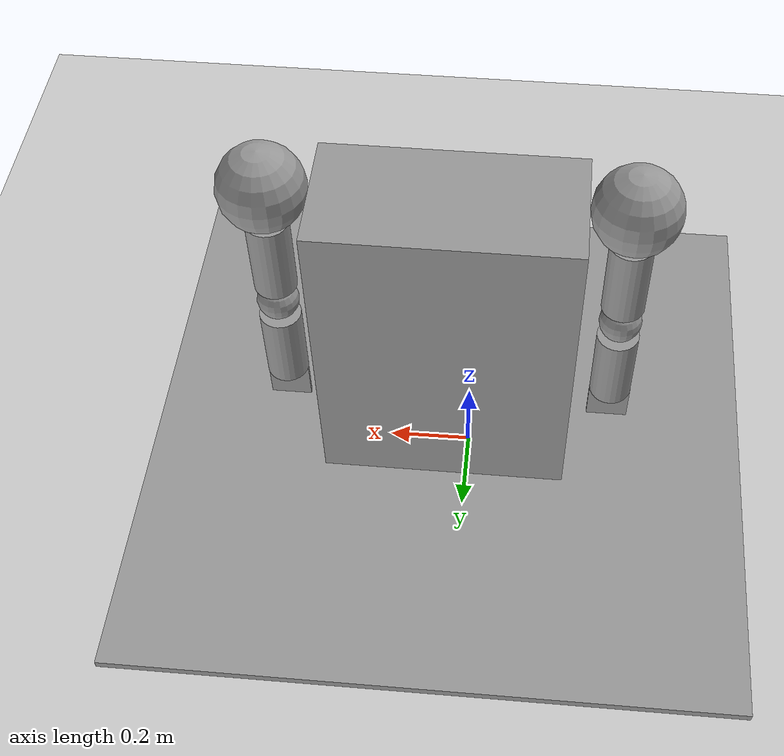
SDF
<sdf version="1.6">
 <world name="default">
  <light name="sun" type="directional">
   <pose>0 0 10 0 -0 0</pose>
   <diffuse>0.8 0.8 0.8 1</diffuse>
   <specular>0.2 0.2 0.2 1</specular>
   <attenuation>
    <range>1000</range>
    <constant>0.9</constant>
    <linear>0.01</linear>
    <quadratic>0.001</quadratic>
   </attenuation>
   <direction>-0.5 0.1 -0.9</direction>
  </light>
  <model name="ground_plane">
   <static>1</static>
   <link name="link">
    <collision name="collision">
     <geometry><plane><normal>0 0 1</normal><size>100 100</size></plane></geometry>
     <surface><friction><ode><mu>100</mu><mu2>50</mu2></ode></friction></surface>
    </collision>
    <visual name="visual">
     <cast_shadows>0</cast_shadows>
     <geometry><plane><normal>0 0 1</normal><size>100 100</size></plane></geometry>
     <material>
      <script><uri>file://media/materials/scripts/gazebo.material</uri><name>Gazebo/Grey</name></script>
     </material>
    </visual>
   </link>
  </model>
  <gravity>0 0 -9.8</gravity>
  <magnetic_field>6e-06 2.3e-05 -4.2e-05</magnetic_field>
  <atmosphere type="adiabatic"/>
  <physics name="default_physics" default="0" type="ode">
   <max_step_size>0.001</max_step_size>
   <real_time_factor>1</real_time_factor>
   <real_time_update_rate>1000</real_time_update_rate>
  </physics>
  <scene><ambient>0.4 0.4 0.4 1</ambient><background>0.7 0.7 0.7 1</background><shadows>1</shadows></scene>
  <spherical_coordinates>
   <surface_model>EARTH_WGS84</surface_model>
   <latitude_deg>0</latitude_deg>
   <longitude_deg>0</longitude_deg>
   <elevation>0</elevation>
   <heading_deg>0</heading_deg>
  </spherical_coordinates>
  <model name="ryan_arms">
   <link name="link_31">
    <inertial>
     <mass>1</mass>
     <inertia>
      <ixx>0.166667</ixx>
      <ixy>0</ixy>
      <ixz>0</ixz>
      <iyy>0.166667</iyy>
      <iyz>0</iyz>
      <izz>0.166667</izz>
     </inertia>
    </inertial>
    <pose>-0.391114 0.378827 -0.495833 0 -0 0</pose>
    <visual name="visual">
     <geometry><box><size>1.5 1.5 0.02</size></box></geometry>
     <material>
      <lighting>1</lighting>
      <script><uri>file://media/materials/scripts/gazebo.material</uri><name>Gazebo/Grey</name></script>
      <shader type="pixel"><normal_map>__default__</normal_map></shader>
      <ambient>0.3 0.3 0.3 1</ambient>
      <diffuse>0.7 0.7 0.7 1</diffuse>
      <specular>0.01 0.01 0.01 1</specular>
      <emissive>0 0 0 1</emissive>
     </material>
    </visual>
    <collision name="collision">
     <geometry><box><size>1.5 1.5 0.02</size></box></geometry>
     <surface>
      <friction>
       <ode><mu>1</mu><mu2>1</mu2><fdir1>0 0 0</fdir1><slip1>0</slip1><slip2>0</slip2></ode>
       <torsional>
        <coefficient>1</coefficient>
        <patch_radius>0</patch_radius>
        <surface_radius>0</surface_radius>
        <use_patch_radius>1</use_patch_radius>
        <ode><slip>0</slip></ode>
       </torsional>
      </friction>
      <bounce><restitution_coefficient>0</restitution_coefficient><threshold>1e+06</threshold></bounce>
      <contact>
       <collide_without_contact>0</collide_without_contact>
       <collide_without_contact_bitmask>1</collide_without_contact_bitmask>
       <collide_bitmask>1</collide_bitmask>
       <ode>
        <soft_cfm>0</soft_cfm>
        <soft_erp>0.2</soft_erp>
        <kp>1e+13</kp>
        <kd>1</kd>
        <max_vel>0.01</max_vel>
        <min_depth>0</min_depth>
       </ode>
       <bullet>
        <split_impulse>1</split_impulse>
        <split_impulse_penetration_threshold>-0.01</split_impulse_penetration_threshold>
        <soft_cfm>0</soft_cfm>
        <soft_erp>0.2</soft_erp>
        <kp>1e+13</kp>
        <kd>1</kd>
       </bullet>
      </contact>
     </surface>
    </collision>
   </link>
   <link name="link_32">
    <inertial>
     <mass>1</mass>
     <inertia>
      <ixx>0.166667</ixx>
      <ixy>0</ixy>
      <ixz>0</ixz>
      <iyy>0.166667</iyy>
      <iyz>0</iyz>
      <izz>0.166667</izz>
     </inertia>
    </inertial>
    <pose>-0.391114 0.378827 -0.085833 0 -0 0</pose>
    <visual name="visual">
     <geometry><box><size>0.6 0.3 0.8</size></box></geometry>
     <material>
      <lighting>1</lighting>
      <script><uri>file://media/materials/scripts/gazebo.material</uri><name>Gazebo/Grey</name></script>
      <shader type="pixel"><normal_map>__default__</normal_map></shader>
      <ambient>0.3 0.3 0.3 1</ambient>
      <diffuse>0.7 0.7 0.7 1</diffuse>
      <specular>0.01 0.01 0.01 1</specular>
      <emissive>0 0 0 1</emissive>
     </material>
    </visual>
    <collision name="collision">
     <geometry><box><size>0.6 0.3 0.8</size></box></geometry>
     <surface>
      <friction>
       <ode><mu>1</mu><mu2>1</mu2><fdir1>0 0 0</fdir1><slip1>0</slip1><slip2>0</slip2></ode>
       <torsional>
        <coefficient>1</coefficient>
        <patch_radius>0</patch_radius>
        <surface_radius>0</surface_radius>
        <use_patch_radius>1</use_patch_radius>
        <ode><slip>0</slip></ode>
       </torsional>
      </friction>
      <bounce><restitution_coefficient>0</restitution_coefficient><threshold>1e+06</threshold></bounce>
      <contact>
       <collide_without_contact>0</collide_without_contact>
       <collide_without_contact_bitmask>1</collide_without_contact_bitmask>
       <collide_bitmask>1</collide_bitmask>
       <ode>
        <soft_cfm>0</soft_cfm>
        <soft_erp>0.2</soft_erp>
        <kp>1e+13</kp>
        <kd>1</kd>
        <max_vel>0.01</max_vel>
        <min_depth>0</min_depth>
       </ode>
       <bullet>
        <split_impulse>1</split_impulse>
        <split_impulse_penetration_threshold>-0.01</split_impulse_penetration_threshold>
        <soft_cfm>0</soft_cfm>
        <soft_erp>0.2</soft_erp>
        <kp>1e+13</kp>
        <kd>1</kd>
       </bullet>
      </contact>
     </surface>
    </collision>
   </link>
   <link name="link_33">
    <inertial>
     <mass>1</mass>
     <inertia><ixx>0.1</ixx><ixy>0</ixy><ixz>0</ixz><iyy>0.1</iyy><iyz>0</iyz><izz>0.1</izz></inertia>
    </inertial>
    <pose>0.008886 0.378827 0.314167 0 -0 0</pose>
    <visual name="visual">
     <geometry><sphere><radius>0.1</radius></sphere></geometry>
     <material>
      <lighting>1</lighting>
      <script><uri>file://media/materials/scripts/gazebo.material</uri><name>Gazebo/Grey</name></script>
      <shader type="pixel"><normal_map>__default__</normal_map></shader>
      <ambient>0.3 0.3 0.3 1</ambient>
      <diffuse>0.7 0.7 0.7 1</diffuse>
      <specular>0.01 0.01 0.01 1</specular>
      <emissive>0 0 0 1</emissive>
     </material>
    </visual>
    <collision name="collision">
     <geometry><sphere><radius>0.1</radius></sphere></geometry>
     <surface>
      <friction>
       <ode><mu>1</mu><mu2>1</mu2><fdir1>0 0 0</fdir1><slip1>0</slip1><slip2>0</slip2></ode>
       <torsional>
        <coefficient>1</coefficient>
        <patch_radius>0</patch_radius>
        <surface_radius>0</surface_radius>
        <use_patch_radius>1</use_patch_radius>
        <ode><slip>0</slip></ode>
       </torsional>
      </friction>
      <bounce><restitution_coefficient>0</restitution_coefficient><threshold>1e+06</threshold></bounce>
      <contact>
       <collide_without_contact>0</collide_without_contact>
       <collide_without_contact_bitmask>1</collide_without_contact_bitmask>
       <collide_bitmask>1</collide_bitmask>
       <ode>
        <soft_cfm>0</soft_cfm>
        <soft_erp>0.2</soft_erp>
        <kp>1e+13</kp>
        <kd>1</kd>
        <max_vel>0.01</max_vel>
        <min_depth>0</min_depth>
       </ode>
       <bullet>
        <split_impulse>1</split_impulse>
        <split_impulse_penetration_threshold>-0.01</split_impulse_penetration_threshold>
        <soft_cfm>0</soft_cfm>
        <soft_erp>0.2</soft_erp>
        <kp>1e+13</kp>
        <kd>1</kd>
       </bullet>
      </contact>
     </surface>
    </collision>
   </link>
   <link name="link_33_clone">
    <inertial>
     <mass>1</mass>
     <inertia><ixx>0.1</ixx><ixy>0</ixy><ixz>0</ixz><iyy>0.1</iyy><iyz>0</iyz><izz>0.1</izz></inertia>
    </inertial>
    <pose>-0.791114 0.378827 0.314167 0 -0 0</pose>
    <visual name="visual">
     <geometry><sphere><radius>0.1</radius></sphere></geometry>
     <material>
      <lighting>1</lighting>
      <script><uri>file://media/materials/scripts/gazebo.material</uri><name>Gazebo/Grey</name></script>
      <shader type="pixel"><normal_map>__default__</normal_map></shader>
      <ambient>0.3 0.3 0.3 1</ambient>
      <diffuse>0.7 0.7 0.7 1</diffuse>
      <specular>0.01 0.01 0.01 1</specular>
      <emissive>0 0 0 1</emissive>
     </material>
    </visual>
    <collision name="collision">
     <geometry><sphere><radius>0.1</radius></sphere></geometry>
     <surface>
      <friction>
       <ode><mu>1</mu><mu2>1</mu2><fdir1>0 0 0</fdir1><slip1>0</slip1><slip2>0</slip2></ode>
       <torsional>
        <coefficient>1</coefficient>
        <patch_radius>0</patch_radius>
        <surface_radius>0</surface_radius>
        <use_patch_radius>1</use_patch_radius>
        <ode><slip>0</slip></ode>
       </torsional>
      </friction>
      <bounce><restitution_coefficient>0</restitution_coefficient><threshold>1e+06</threshold></bounce>
      <contact>
       <collide_without_contact>0</collide_without_contact>
       <collide_without_contact_bitmask>1</collide_without_contact_bitmask>
       <collide_bitmask>1</collide_bitmask>
       <ode>
        <soft_cfm>0</soft_cfm>
        <soft_erp>0.2</soft_erp>
        <kp>1e+13</kp>
        <kd>1</kd>
        <max_vel>0.01</max_vel>
        <min_depth>0</min_depth>
       </ode>
       <bullet>
        <split_impulse>1</split_impulse>
        <split_impulse_penetration_threshold>-0.01</split_impulse_penetration_threshold>
        <soft_cfm>0</soft_cfm>
        <soft_erp>0.2</soft_erp>
        <kp>1e+13</kp>
        <kd>1</kd>
       </bullet>
      </contact>
     </surface>
    </collision>
   </link>
   <link name="link_34">
    <inertial>
     <mass>1</mass>
     <inertia><ixx>0.145833</ixx><ixy>0</ixy><ixz>0</ixz><iyy>0.145833</iyy><iyz>0</iyz><izz>0.125</izz></inertia>
    </inertial>
    <pose>0.008886 0.378827 0.314167 0 -0 0</pose>
    <visual name="visual">
     <pose>0 0 -0.2 0 -0 0</pose>
     <geometry><cylinder><radius>0.05</radius><length>0.2</length></cylinder></geometry>
     <material>
      <lighting>1</lighting>
      <script><uri>file://media/materials/scripts/gazebo.material</uri><name>Gazebo/Grey</name></script>
      <shader type="pixel"><normal_map>__default__</normal_map></shader>
      <ambient>0.3 0.3 0.3 1</ambient>
      <diffuse>0.7 0.7 0.7 1</diffuse>
      <specular>0.01 0.01 0.01 1</specular>
      <emissive>0 0 0 1</emissive>
     </material>
    </visual>
    <collision name="collision">
     <pose>0 0 -0.2 0 -0 0</pose>
     <geometry><cylinder><radius>0.05</radius><length>0.2</length></cylinder></geometry>
     <surface>
      <friction>
       <ode><mu>1</mu><mu2>1</mu2><fdir1>0 0 0</fdir1><slip1>0</slip1><slip2>0</slip2></ode>
       <torsional>
        <coefficient>1</coefficient>
        <patch_radius>0</patch_radius>
        <surface_radius>0</surface_radius>
        <use_patch_radius>1</use_patch_radius>
        <ode><slip>0</slip></ode>
       </torsional>
      </friction>
      <bounce><restitution_coefficient>0</restitution_coefficient><threshold>1e+06</threshold></bounce>
      <contact>
       <collide_without_contact>0</collide_without_contact>
       <collide_without_contact_bitmask>1</collide_without_contact_bitmask>
       <collide_bitmask>1</collide_bitmask>
       <ode>
        <soft_cfm>0</soft_cfm>
        <soft_erp>0.2</soft_erp>
        <kp>1e+13</kp>
        <kd>1</kd>
        <max_vel>0.01</max_vel>
        <min_depth>0</min_depth>
       </ode>
       <bullet>
        <split_impulse>1</split_impulse>
        <split_impulse_penetration_threshold>-0.01</split_impulse_penetration_threshold>
        <soft_cfm>0</soft_cfm>
        <soft_erp>0.2</soft_erp>
        <kp>1e+13</kp>
        <kd>1</kd>
       </bullet>
      </contact>
     </surface>
    </collision>
   </link>
   <link name="link_34_clone">
    <inertial>
     <mass>1</mass>
     <inertia><ixx>0.145833</ixx><ixy>0</ixy><ixz>0</ixz><iyy>0.145833</iyy><iyz>0</iyz><izz>0.125</izz></inertia>
    </inertial>
    <pose>-0.791114 0.378827 0.314167 0 -0 0</pose>
    <visual name="visual">
     <pose>0 0 -0.2 0 -0 0</pose>
     <geometry><cylinder><radius>0.05</radius><length>0.2</length></cylinder></geometry>
     <material>
      <lighting>1</lighting>
      <script><uri>file://media/materials/scripts/gazebo.material</uri><name>Gazebo/Grey</name></script>
      <shader type="pixel"><normal_map>__default__</normal_map></shader>
      <ambient>0.3 0.3 0.3 1</ambient>
      <diffuse>0.7 0.7 0.7 1</diffuse>
      <specular>0.01 0.01 0.01 1</specular>
      <emissive>0 0 0 1</emissive>
     </material>
    </visual>
    <collision name="collision">
     <pose>0 0 -0.2 0 -0 0</pose>
     <geometry><cylinder><radius>0.05</radius><length>0.2</length></cylinder></geometry>
     <surface>
      <friction>
       <ode><mu>1</mu><mu2>1</mu2><fdir1>0 0 0</fdir1><slip1>0</slip1><slip2>0</slip2></ode>
       <torsional>
        <coefficient>1</coefficient>
        <patch_radius>0</patch_radius>
        <surface_radius>0</surface_radius>
        <use_patch_radius>1</use_patch_radius>
        <ode><slip>0</slip></ode>
       </torsional>
      </friction>
      <bounce><restitution_coefficient>0</restitution_coefficient><threshold>1e+06</threshold></bounce>
      <contact>
       <collide_without_contact>0</collide_without_contact>
       <collide_without_contact_bitmask>1</collide_without_contact_bitmask>
       <collide_bitmask>1</collide_bitmask>
       <ode>
        <soft_cfm>0</soft_cfm>
        <soft_erp>0.2</soft_erp>
        <kp>1e+13</kp>
        <kd>1</kd>
        <max_vel>0.01</max_vel>
        <min_depth>0</min_depth>
       </ode>
       <bullet>
        <split_impulse>1</split_impulse>
        <split_impulse_penetration_threshold>-0.01</split_impulse_penetration_threshold>
        <soft_cfm>0</soft_cfm>
        <soft_erp>0.2</soft_erp>
        <kp>1e+13</kp>
        <kd>1</kd>
       </bullet>
      </contact>
     </surface>
    </collision>
   </link>
   <link name="link_35">
    <inertial>
     <mass>1</mass>
     <inertia><ixx>0.1</ixx><ixy>0</ixy><ixz>0</ixz><iyy>0.1</iyy><iyz>0</iyz><izz>0.1</izz></inertia>
    </inertial>
    <pose>0.008886 0.378827 -0.035833 0 -0 0</pose>
    <visual name="visual">
     <geometry><sphere><radius>0.05</radius></sphere></geometry>
     <material>
      <lighting>1</lighting>
      <script><uri>file://media/materials/scripts/gazebo.material</uri><name>Gazebo/Grey</name></script>
      <shader type="pixel"><normal_map>__default__</normal_map></shader>
      <ambient>0.3 0.3 0.3 1</ambient>
      <diffuse>0.7 0.7 0.7 1</diffuse>
      <specular>0.01 0.01 0.01 1</specular>
      <emissive>0 0 0 1</emissive>
     </material>
    </visual>
    <collision name="collision">
     <geometry><sphere><radius>0.05</radius></sphere></geometry>
     <surface>
      <friction>
       <ode><mu>1</mu><mu2>1</mu2><fdir1>0 0 0</fdir1><slip1>0</slip1><slip2>0</slip2></ode>
       <torsional>
        <coefficient>1</coefficient>
        <patch_radius>0</patch_radius>
        <surface_radius>0</surface_radius>
        <use_patch_radius>1</use_patch_radius>
        <ode><slip>0</slip></ode>
       </torsional>
      </friction>
      <bounce><restitution_coefficient>0</restitution_coefficient><threshold>1e+06</threshold></bounce>
      <contact>
       <collide_without_contact>0</collide_without_contact>
       <collide_without_contact_bitmask>1</collide_without_contact_bitmask>
       <collide_bitmask>1</collide_bitmask>
       <ode>
        <soft_cfm>0</soft_cfm>
        <soft_erp>0.2</soft_erp>
        <kp>1e+13</kp>
        <kd>1</kd>
        <max_vel>0.01</max_vel>
        <min_depth>0</min_depth>
       </ode>
       <bullet>
        <split_impulse>1</split_impulse>
        <split_impulse_penetration_threshold>-0.01</split_impulse_penetration_threshold>
        <soft_cfm>0</soft_cfm>
        <soft_erp>0.2</soft_erp>
        <kp>1e+13</kp>
        <kd>1</kd>
       </bullet>
      </contact>
     </surface>
    </collision>
   </link>
   <link name="link_35_clone">
    <inertial>
     <mass>1</mass>
     <inertia><ixx>0.1</ixx><ixy>0</ixy><ixz>0</ixz><iyy>0.1</iyy><iyz>0</iyz><izz>0.1</izz></inertia>
    </inertial>
    <pose>-0.791114 0.378827 -0.035833 0 -0 0</pose>
    <visual name="visual">
     <geometry><sphere><radius>0.05</radius></sphere></geometry>
     <material>
      <lighting>1</lighting>
      <script><uri>file://media/materials/scripts/gazebo.material</uri><name>Gazebo/Grey</name></script>
      <shader type="pixel"><normal_map>__default__</normal_map></shader>
      <ambient>0.3 0.3 0.3 1</ambient>
      <diffuse>0.7 0.7 0.7 1</diffuse>
      <specular>0.01 0.01 0.01 1</specular>
      <emissive>0 0 0 1</emissive>
     </material>
    </visual>
    <collision name="collision">
     <geometry><sphere><radius>0.05</radius></sphere></geometry>
     <surface>
      <friction>
       <ode><mu>1</mu><mu2>1</mu2><fdir1>0 0 0</fdir1><slip1>0</slip1><slip2>0</slip2></ode>
       <torsional>
        <coefficient>1</coefficient>
        <patch_radius>0</patch_radius>
        <surface_radius>0</surface_radius>
        <use_patch_radius>1</use_patch_radius>
        <ode><slip>0</slip></ode>
       </torsional>
      </friction>
      <bounce><restitution_coefficient>0</restitution_coefficient><threshold>1e+06</threshold></bounce>
      <contact>
       <collide_without_contact>0</collide_without_contact>
       <collide_without_contact_bitmask>1</collide_without_contact_bitmask>
       <collide_bitmask>1</collide_bitmask>
       <ode>
        <soft_cfm>0</soft_cfm>
        <soft_erp>0.2</soft_erp>
        <kp>1e+13</kp>
        <kd>1</kd>
        <max_vel>0.01</max_vel>
        <min_depth>0</min_depth>
       </ode>
       <bullet>
        <split_impulse>1</split_impulse>
        <split_impulse_penetration_threshold>-0.01</split_impulse_penetration_threshold>
        <soft_cfm>0</soft_cfm>
        <soft_erp>0.2</soft_erp>
        <kp>1e+13</kp>
        <kd>1</kd>
       </bullet>
      </contact>
     </surface>
    </collision>
   </link>
   <link name="link_36">
    <inertial>
     <mass>1</mass>
     <inertia><ixx>0.145833</ixx><ixy>0</ixy><ixz>0</ixz><iyy>0.145833</iyy><iyz>0</iyz><izz>0.125</izz></inertia>
    </inertial>
    <pose>0.008886 0.378827 -0.035833 0 -0 0</pose>
    <visual name="visual">
     <pose>0 0 -0.15 0 -0 0</pose>
     <geometry><cylinder><radius>0.05</radius><length>0.2</length></cylinder></geometry>
     <material>
      <lighting>1</lighting>
      <script><uri>file://media/materials/scripts/gazebo.material</uri><name>Gazebo/Grey</name></script>
      <shader type="pixel"><normal_map>__default__</normal_map></shader>
      <ambient>0.3 0.3 0.3 1</ambient>
      <diffuse>0.7 0.7 0.7 1</diffuse>
      <specular>0.01 0.01 0.01 1</specular>
      <emissive>0 0 0 1</emissive>
     </material>
    </visual>
    <collision name="collision">
     <pose>0 0 -0.15 0 -0 0</pose>
     <geometry><cylinder><radius>0.05</radius><length>0.2</length></cylinder></geometry>
     <surface>
      <friction>
       <ode><mu>1</mu><mu2>1</mu2><fdir1>0 0 0</fdir1><slip1>0</slip1><slip2>0</slip2></ode>
       <torsional>
        <coefficient>1</coefficient>
        <patch_radius>0</patch_radius>
        <surface_radius>0</surface_radius>
        <use_patch_radius>1</use_patch_radius>
        <ode><slip>0</slip></ode>
       </torsional>
      </friction>
      <bounce><restitution_coefficient>0</restitution_coefficient><threshold>1e+06</threshold></bounce>
      <contact>
       <collide_without_contact>0</collide_without_contact>
       <collide_without_contact_bitmask>1</collide_without_contact_bitmask>
       <collide_bitmask>1</collide_bitmask>
       <ode>
        <soft_cfm>0</soft_cfm>
        <soft_erp>0.2</soft_erp>
        <kp>1e+13</kp>
        <kd>1</kd>
        <max_vel>0.01</max_vel>
        <min_depth>0</min_depth>
       </ode>
       <bullet>
        <split_impulse>1</split_impulse>
        <split_impulse_penetration_threshold>-0.01</split_impulse_penetration_threshold>
        <soft_cfm>0</soft_cfm>
        <soft_erp>0.2</soft_erp>
        <kp>1e+13</kp>
        <kd>1</kd>
       </bullet>
      </contact>
     </surface>
    </collision>
   </link>
   <link name="link_36_clone">
    <inertial>
     <mass>1</mass>
     <inertia><ixx>0.145833</ixx><ixy>0</ixy><ixz>0</ixz><iyy>0.145833</iyy><iyz>0</iyz><izz>0.125</izz></inertia>
    </inertial>
    <pose>-0.791114 0.378827 -0.035833 0 -0 0</pose>
    <visual name="visual">
     <pose>0 0 -0.15 0 -0 0</pose>
     <geometry><cylinder><radius>0.05</radius><length>0.2</length></cylinder></geometry>
     <material>
      <lighting>1</lighting>
      <script><uri>file://media/materials/scripts/gazebo.material</uri><name>Gazebo/Grey</name></script>
      <shader type="pixel"><normal_map>__default__</normal_map></shader>
      <ambient>0.3 0.3 0.3 1</ambient>
      <diffuse>0.7 0.7 0.7 1</diffuse>
      <specular>0.01 0.01 0.01 1</specular>
      <emissive>0 0 0 1</emissive>
     </material>
    </visual>
    <collision name="collision">
     <pose>0 0 -0.15 0 -0 0</pose>
     <geometry><cylinder><radius>0.05</radius><length>0.2</length></cylinder></geometry>
     <surface>
      <friction>
       <ode><mu>1</mu><mu2>1</mu2><fdir1>0 0 0</fdir1><slip1>0</slip1><slip2>0</slip2></ode>
       <torsional>
        <coefficient>1</coefficient>
        <patch_radius>0</patch_radius>
        <surface_radius>0</surface_radius>
        <use_patch_radius>1</use_patch_radius>
        <ode><slip>0</slip></ode>
       </torsional>
      </friction>
      <bounce><restitution_coefficient>0</restitution_coefficient><threshold>1e+06</threshold></bounce>
      <contact>
       <collide_without_contact>0</collide_without_contact>
       <collide_without_contact_bitmask>1</collide_without_contact_bitmask>
       <collide_bitmask>1</collide_bitmask>
       <ode>
        <soft_cfm>0</soft_cfm>
        <soft_erp>0.2</soft_erp>
        <kp>1e+13</kp>
        <kd>1</kd>
        <max_vel>0.01</max_vel>
        <min_depth>0</min_depth>
       </ode>
       <bullet>
        <split_impulse>1</split_impulse>
        <split_impulse_penetration_threshold>-0.01</split_impulse_penetration_threshold>
        <soft_cfm>0</soft_cfm>
        <soft_erp>0.2</soft_erp>
        <kp>1e+13</kp>
        <kd>1</kd>
       </bullet>
      </contact>
     </surface>
    </collision>
   </link>
   <link name="link_37">
    <inertial>
     <mass>1</mass>
     <inertia>
      <ixx>0.166667</ixx>
      <ixy>0</ixy>
      <ixz>0</ixz>
      <iyy>0.166667</iyy>
      <iyz>0</iyz>
      <izz>0.166667</izz>
     </inertia>
    </inertial>
    <pose>0.008886 0.378827 -0.285833 0 -0 0</pose>
    <visual name="visual">
     <pose>0 0 -0.05 0 -0 0</pose>
     <geometry><box><size>0.1 0.01 0.1</size></box></geometry>
     <material>
      <lighting>1</lighting>
      <script><uri>file://media/materials/scripts/gazebo.material</uri><name>Gazebo/Grey</name></script>
      <shader type="pixel"><normal_map>__default__</normal_map></shader>
      <ambient>0.3 0.3 0.3 1</ambient>
      <diffuse>0.7 0.7 0.7 1</diffuse>
      <specular>0.01 0.01 0.01 1</specular>
      <emissive>0 0 0 1</emissive>
     </material>
    </visual>
    <collision name="collision">
     <pose>0 0 -0.05 0 -0 0</pose>
     <geometry><box><size>0.1 0.01 0.1</size></box></geometry>
     <surface>
      <friction>
       <ode><mu>1</mu><mu2>1</mu2><fdir1>0 0 0</fdir1><slip1>0</slip1><slip2>0</slip2></ode>
       <torsional>
        <coefficient>1</coefficient>
        <patch_radius>0</patch_radius>
        <surface_radius>0</surface_radius>
        <use_patch_radius>1</use_patch_radius>
        <ode><slip>0</slip></ode>
       </torsional>
      </friction>
      <bounce><restitution_coefficient>0</restitution_coefficient><threshold>1e+06</threshold></bounce>
      <contact>
       <collide_without_contact>0</collide_without_contact>
       <collide_without_contact_bitmask>1</collide_without_contact_bitmask>
       <collide_bitmask>1</collide_bitmask>
       <ode>
        <soft_cfm>0</soft_cfm>
        <soft_erp>0.2</soft_erp>
        <kp>1e+13</kp>
        <kd>1</kd>
        <max_vel>0.01</max_vel>
        <min_depth>0</min_depth>
       </ode>
       <bullet>
        <split_impulse>1</split_impulse>
        <split_impulse_penetration_threshold>-0.01</split_impulse_penetration_threshold>
        <soft_cfm>0</soft_cfm>
        <soft_erp>0.2</soft_erp>
        <kp>1e+13</kp>
        <kd>1</kd>
       </bullet>
      </contact>
     </surface>
    </collision>
   </link>
   <link name="link_37_clone">
    <inertial>
     <mass>1</mass>
     <inertia>
      <ixx>0.166667</ixx>
      <ixy>0</ixy>
      <ixz>0</ixz>
      <iyy>0.166667</iyy>
      <iyz>0</iyz>
      <izz>0.166667</izz>
     </inertia>
    </inertial>
    <pose>-0.791114 0.378827 -0.285833 0 -0 0</pose>
    <visual name="visual">
     <pose>0 0 -0.05 0 -0 0</pose>
     <geometry><box><size>0.1 0.01 0.1</size></box></geometry>
     <material>
      <lighting>1</lighting>
      <script><uri>file://media/materials/scripts/gazebo.material</uri><name>Gazebo/Grey</name></script>
      <shader type="pixel"><normal_map>__default__</normal_map></shader>
      <ambient>0.3 0.3 0.3 1</ambient>
      <diffuse>0.7 0.7 0.7 1</diffuse>
      <specular>0.01 0.01 0.01 1</specular>
      <emissive>0 0 0 1</emissive>
     </material>
    </visual>
    <collision name="collision">
     <pose>0 0 -0.05 0 -0 0</pose>
     <geometry><box><size>0.1 0.01 0.1</size></box></geometry>
     <surface>
      <friction>
       <ode><mu>1</mu><mu2>1</mu2><fdir1>0 0 0</fdir1><slip1>0</slip1><slip2>0</slip2></ode>
       <torsional>
        <coefficient>1</coefficient>
        <patch_radius>0</patch_radius>
        <surface_radius>0</surface_radius>
        <use_patch_radius>1</use_patch_radius>
        <ode><slip>0</slip></ode>
       </torsional>
      </friction>
      <bounce><restitution_coefficient>0</restitution_coefficient><threshold>1e+06</threshold></bounce>
      <contact>
       <collide_without_contact>0</collide_without_contact>
       <collide_without_contact_bitmask>1</collide_without_contact_bitmask>
       <collide_bitmask>1</collide_bitmask>
       <ode>
        <soft_cfm>0</soft_cfm>
        <soft_erp>0.2</soft_erp>
        <kp>1e+13</kp>
        <kd>1</kd>
        <max_vel>0.01</max_vel>
        <min_depth>0</min_depth>
       </ode>
       <bullet>
        <split_impulse>1</split_impulse>
        <split_impulse_penetration_threshold>-0.01</split_impulse_penetration_threshold>
        <soft_cfm>0</soft_cfm>
        <soft_erp>0.2</soft_erp>
        <kp>1e+13</kp>
        <kd>1</kd>
       </bullet>
      </contact>
     </surface>
    </collision>
   </link>
   <joint name="link_31_JOINT_28" type="fixed">
    <parent>link_31</parent>
    <child>link_32</child>
    <physics>
     <ode><limit><cfm>0</cfm><erp>0.2</erp></limit><suspension><cfm>0</cfm><erp>0.2</erp></suspension></ode>
    </physics>
   </joint>
   <joint name="link_32_JOINT_29" type="revolute">
    <parent>link_32</parent>
    <child>link_33</child>
    <axis>
     <xyz>0 1 0</xyz>
     <use_parent_model_frame>0</use_parent_model_frame>
     <limit>
      <lower>-1.79769e+308</lower>
      <upper>1.79769e+308</upper>
      <effort>-1</effort>
      <velocity>-1</velocity>
     </limit>
     <dynamics>
      <spring_reference>0</spring_reference>
      <spring_stiffness>0</spring_stiffness>
      <damping>0</damping>
     </dynamics>
    </axis>
    <physics>
     <ode><limit><cfm>0</cfm><erp>0.2</erp></limit><suspension><cfm>0</cfm><erp>0.2</erp></suspension></ode>
    </physics>
   </joint>
   <joint name="link_32_JOINT_30" type="revolute">
    <parent>link_32</parent>
    <child>link_33_clone</child>
    <axis>
     <xyz>0 1 0</xyz>
     <use_parent_model_frame>0</use_parent_model_frame>
     <limit>
      <lower>-1.79769e+308</lower>
      <upper>1.79769e+308</upper>
      <effort>-1</effort>
      <velocity>-1</velocity>
     </limit>
     <dynamics>
      <spring_reference>0</spring_reference>
      <spring_stiffness>0</spring_stiffness>
      <damping>0</damping>
     </dynamics>
    </axis>
    <physics>
     <ode><limit><cfm>0</cfm><erp>0.2</erp></limit><suspension><cfm>0</cfm><erp>0.2</erp></suspension></ode>
    </physics>
   </joint>
   <joint name="link_33_JOINT_31" type="revolute">
    <parent>link_33</parent>
    <child>link_34</child>
    <axis>
     <xyz>0 0 1</xyz>
     <use_parent_model_frame>0</use_parent_model_frame>
     <limit>
      <lower>-1.79769e+308</lower>
      <upper>1.79769e+308</upper>
      <effort>-1</effort>
      <velocity>-1</velocity>
     </limit>
     <dynamics>
      <spring_reference>0</spring_reference>
      <spring_stiffness>0</spring_stiffness>
      <damping>0</damping>
     </dynamics>
    </axis>
    <physics>
     <ode><limit><cfm>0</cfm><erp>0.2</erp></limit><suspension><cfm>0</cfm><erp>0.2</erp></suspension></ode>
    </physics>
   </joint>
   <joint name="link_33_clone_JOINT_32" type="revolute">
    <parent>link_33_clone</parent>
    <child>link_34_clone</child>
    <axis>
     <xyz>0 0 1</xyz>
     <use_parent_model_frame>0</use_parent_model_frame>
     <limit>
      <lower>-1.79769e+308</lower>
      <upper>1.79769e+308</upper>
      <effort>-1</effort>
      <velocity>-1</velocity>
     </limit>
     <dynamics>
      <spring_reference>0</spring_reference>
      <spring_stiffness>0</spring_stiffness>
      <damping>0</damping>
     </dynamics>
    </axis>
    <physics>
     <ode><limit><cfm>0</cfm><erp>0.2</erp></limit><suspension><cfm>0</cfm><erp>0.2</erp></suspension></ode>
    </physics>
   </joint>
   <joint name="link_34_JOINT_33" type="revolute">
    <parent>link_34</parent>
    <child>link_35</child>
    <axis>
     <xyz>1 0 0</xyz>
     <use_parent_model_frame>0</use_parent_model_frame>
     <limit>
      <lower>-1.79769e+308</lower>
      <upper>1.79769e+308</upper>
      <effort>-1</effort>
      <velocity>-1</velocity>
     </limit>
     <dynamics>
      <spring_reference>0</spring_reference>
      <spring_stiffness>0</spring_stiffness>
      <damping>0</damping>
     </dynamics>
    </axis>
    <physics>
     <ode><limit><cfm>0</cfm><erp>0.2</erp></limit><suspension><cfm>0</cfm><erp>0.2</erp></suspension></ode>
    </physics>
   </joint>
   <joint name="link_34_clone_JOINT_34" type="revolute">
    <parent>link_34_clone</parent>
    <child>link_35_clone</child>
    <axis>
     <xyz>0 0 1</xyz>
     <use_parent_model_frame>0</use_parent_model_frame>
     <limit>
      <lower>-1.79769e+308</lower>
      <upper>1.79769e+308</upper>
      <effort>-1</effort>
      <velocity>-1</velocity>
     </limit>
     <dynamics>
      <spring_reference>0</spring_reference>
      <spring_stiffness>0</spring_stiffness>
      <damping>0</damping>
     </dynamics>
    </axis>
    <physics>
     <ode><limit><cfm>0</cfm><erp>0.2</erp></limit><suspension><cfm>0</cfm><erp>0.2</erp></suspension></ode>
    </physics>
   </joint>
   <joint name="link_35_JOINT_35" type="revolute">
    <parent>link_35</parent>
    <child>link_36</child>
    <axis>
     <xyz>1 0 0</xyz>
     <use_parent_model_frame>0</use_parent_model_frame>
     <limit>
      <lower>-1.79769e+308</lower>
      <upper>1.79769e+308</upper>
      <effort>-1</effort>
      <velocity>-1</velocity>
     </limit>
     <dynamics>
      <spring_reference>0</spring_reference>
      <spring_stiffness>0</spring_stiffness>
      <damping>0</damping>
     </dynamics>
    </axis>
    <physics>
     <ode><limit><cfm>0</cfm><erp>0.2</erp></limit><suspension><cfm>0</cfm><erp>0.2</erp></suspension></ode>
    </physics>
   </joint>
   <joint name="link_35_clone_JOINT_36" type="revolute">
    <parent>link_35_clone</parent>
    <child>link_36_clone</child>
    <axis>
     <xyz>1 0 0</xyz>
     <use_parent_model_frame>0</use_parent_model_frame>
     <limit>
      <lower>-1.79769e+308</lower>
      <upper>1.79769e+308</upper>
      <effort>-1</effort>
      <velocity>-1</velocity>
     </limit>
     <dynamics>
      <spring_reference>0</spring_reference>
      <spring_stiffness>0</spring_stiffness>
      <damping>0</damping>
     </dynamics>
    </axis>
    <physics>
     <ode><limit><cfm>0</cfm><erp>0.2</erp></limit><suspension><cfm>0</cfm><erp>0.2</erp></suspension></ode>
    </physics>
   </joint>
   <joint name="link_36_JOINT_37" type="fixed">
    <parent>link_36</parent>
    <child>link_37</child>
    <physics>
     <ode><limit><cfm>0</cfm><erp>0.2</erp></limit><suspension><cfm>0</cfm><erp>0.2</erp></suspension></ode>
    </physics>
   </joint>
   <joint name="link_36_clone_JOINT_38" type="fixed">
    <parent>link_36_clone</parent>
    <child>link_37_clone</child>
    <physics>
     <ode><limit><cfm>0</cfm><erp>0.2</erp></limit><suspension><cfm>0</cfm><erp>0.2</erp></suspension></ode>
    </physics>
   </joint>
   <static>0</static>
   <pose>0.445909 -0.40621 0.505822 -0 1e-05 -0.000235</pose>
   <plugin name="ryan_left_arms_control" filename="libryan_arms_plugin_l.so"/>
   <plugin name="ryan_right_arms_control" filename="libryan_arms_plugin_r.so"/>
  </model>
 </world>
</sdf>
